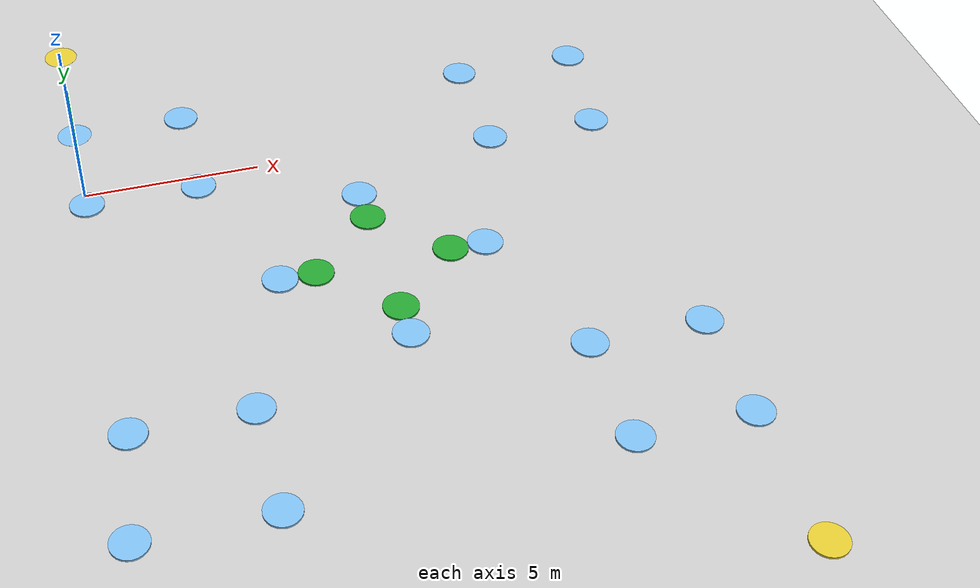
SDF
<sdf version="1.6">
 <world name="default">
  <scene><ambient>0.4 0.4 0.4 1</ambient><background>0.7 0.7 0.7 1</background><shadows>1</shadows></scene>
  <light name="sun" type="directional">
   <pose>0 0 10 0 -0 0</pose>
   <diffuse>0.8 0.8 0.8 1</diffuse>
   <specular>0.2 0.2 0.2 1</specular>
   <attenuation>
    <range>1000</range>
    <constant>0.9</constant>
    <linear>0.01</linear>
    <quadratic>0.001</quadratic>
   </attenuation>
   <direction>-0.5 0.1 -0.9</direction>
  </light>
  <model name="ground_plane">
   <static>1</static>
   <link name="link">
    <collision name="collision">
     <geometry><plane><normal>0 0 1</normal><size>100 100</size></plane></geometry>
     <surface>
      <contact><collide_bitmask>65535</collide_bitmask></contact>
      <friction><ode><mu>100</mu><mu2>50</mu2></ode></friction>
     </surface>
    </collision>
    <visual name="visual">
     <cast_shadows>0</cast_shadows>
     <geometry><plane><normal>0 0 1</normal><size>100 100</size></plane></geometry>
     <material>
      <script><uri>file://media/materials/scripts/gazebo.material</uri><name>Gazebo/Grey</name></script>
     </material>
    </visual>
   </link>
  </model>
  <physics name="default_physics" default="0" type="ode">
   <real_time_update_rate>1000</real_time_update_rate>
   <max_step_size>0.001</max_step_size>
   <real_time_factor>1</real_time_factor>
   <ode>
    <solver>
     <type>quick</type>
     <iters>150</iters>
     <precon_iters>0</precon_iters>
     <sor>1.4</sor>
     <use_dynamic_moi_rescaling>1</use_dynamic_moi_rescaling>
    </solver>
    <constraints>
     <cfm>1e-05</cfm>
     <erp>0.2</erp>
     <contact_max_correcting_vel>2000</contact_max_correcting_vel>
     <contact_surface_layer>0.01</contact_surface_layer>
    </constraints>
   </ode>
  </physics>
  <gravity>0 0 -9.8</gravity>
  <magnetic_field>6e-06 2.3e-05 -4.2e-05</magnetic_field>
  <atmosphere type="adiabatic"/>
  <audio><device>default</device></audio>
  <spherical_coordinates>
   <surface_model>EARTH_WGS84</surface_model>
   <latitude_deg>0</latitude_deg>
   <longitude_deg>0</longitude_deg>
   <elevation>0</elevation>
   <heading_deg>0</heading_deg>
  </spherical_coordinates>
  <model name="u1">
   <static>1</static>
   <pose>0 6.8 0 0 -0 0</pose>
   <link name="link">
    <inertial>
     <mass>1</mass>
     <inertia><ixx>0.145833</ixx><ixy>0</ixy><ixz>0</ixz><iyy>0.145833</iyy><iyz>0</iyz><izz>0.125</izz></inertia>
    </inertial>
    <collision name="collision">
     <geometry><cylinder><radius>0</radius><length>0</length></cylinder></geometry>
    </collision>
    <visual name="visual">
     <geometry><cylinder><radius>0.5</radius><length>0.0009555</length></cylinder></geometry>
     <material>
      <script><name>Gazebo/ZincYellow</name><uri>file://media/materials/scripts/gazebo.material</uri></script>
     </material>
    </visual>
   </link>
  </model>
  <model name="u2">
   <static>1</static>
   <pose>15.2 -16.2 0 0 -0 0</pose>
   <link name="link">
    <inertial>
     <mass>1</mass>
     <inertia><ixx>0.145833</ixx><ixy>0</ixy><ixz>0</ixz><iyy>0.145833</iyy><iyz>0</iyz><izz>0.125</izz></inertia>
    </inertial>
    <collision name="collision">
     <geometry><cylinder><radius>0</radius><length>0</length></cylinder></geometry>
    </collision>
    <visual name="visual">
     <geometry><cylinder><radius>0.5</radius><length>0.06</length></cylinder></geometry>
     <material>
      <script><name>Gazebo/ZincYellow</name><uri>file://media/materials/scripts/gazebo.material</uri></script>
     </material>
    </visual>
   </link>
  </model>
  <model name="4">
   <static>1</static>
   <pose>0 2.8 0 0 -0 0</pose>
   <link name="link">
    <inertial>
     <mass>1</mass>
     <inertia><ixx>0.145833</ixx><ixy>0</ixy><ixz>0</ixz><iyy>0.145833</iyy><iyz>0</iyz><izz>0.125</izz></inertia>
    </inertial>
    <collision name="collision">
     <geometry><cylinder><radius>0</radius><length>0</length></cylinder></geometry>
    </collision>
    <visual name="visual">
     <geometry><cylinder><radius>0.5</radius><length>0.00098418</length></cylinder></geometry>
     <material>
      <script><name>Gazebo/SkyBlue</name><uri>file://media/materials/scripts/gazebo.material</uri></script>
     </material>
    </visual>
   </link>
  </model>
  <model name="5">
   <static>1</static>
   <pose>3.2 2.8 0 0 -0 0</pose>
   <link name="link">
    <inertial>
     <mass>1</mass>
     <inertia><ixx>0.145833</ixx><ixy>0</ixy><ixz>0</ixz><iyy>0.145833</iyy><iyz>0</iyz><izz>0.125</izz></inertia>
    </inertial>
    <collision name="collision">
     <geometry><cylinder><radius>0</radius><length>0</length></cylinder></geometry>
    </collision>
    <visual name="visual">
     <geometry><cylinder><radius>0.5</radius><length>0.06</length></cylinder></geometry>
     <material>
      <script><name>Gazebo/SkyBlue</name><uri>file://media/materials/scripts/gazebo.material</uri></script>
     </material>
    </visual>
   </link>
  </model>
  <model name="6">
   <static>1</static>
   <pose>12.0 2.8 0 0 -0 0</pose>
   <link name="link">
    <inertial>
     <mass>1</mass>
     <inertia><ixx>0.145833</ixx><ixy>0</ixy><ixz>0</ixz><iyy>0.145833</iyy><iyz>0</iyz><izz>0.125</izz></inertia>
    </inertial>
    <collision name="collision">
     <geometry><cylinder><radius>0</radius><length>0</length></cylinder></geometry>
    </collision>
    <visual name="visual">
     <geometry><cylinder><radius>0.5</radius><length>0.06</length></cylinder></geometry>
     <material>
      <script><name>Gazebo/SkyBlue</name><uri>file://media/materials/scripts/gazebo.material</uri></script>
     </material>
    </visual>
   </link>
  </model>
  <model name="7">
   <static>1</static>
   <pose>15.6 2.8 0 0 -0 0</pose>
   <link name="link">
    <inertial>
     <mass>1</mass>
     <inertia><ixx>0.145833</ixx><ixy>0</ixy><ixz>0</ixz><iyy>0.145833</iyy><iyz>0</iyz><izz>0.125</izz></inertia>
    </inertial>
    <collision name="collision">
     <geometry><cylinder><radius>0</radius><length>0</length></cylinder></geometry>
    </collision>
    <visual name="visual">
     <geometry><cylinder><radius>0.5</radius><length>0.06</length></cylinder></geometry>
     <material>
      <script><name>Gazebo/SkyBlue</name><uri>file://media/materials/scripts/gazebo.material</uri></script>
     </material>
    </visual>
   </link>
  </model>
  <model name="8">
   <static>1</static>
   <pose>15.2 -0.4 0 0 -0 0</pose>
   <link name="link">
    <inertial>
     <mass>1</mass>
     <inertia><ixx>0.145833</ixx><ixy>0</ixy><ixz>0</ixz><iyy>0.145833</iyy><iyz>0</iyz><izz>0.125</izz></inertia>
    </inertial>
    <collision name="collision">
     <geometry><cylinder><radius>0</radius><length>0</length></cylinder></geometry>
    </collision>
    <visual name="visual">
     <geometry><cylinder><radius>0.5</radius><length>0.06</length></cylinder></geometry>
     <material>
      <script><name>Gazebo/SkyBlue</name><uri>file://media/materials/scripts/gazebo.material</uri></script>
     </material>
    </visual>
   </link>
  </model>
  <model name="9">
   <static>1</static>
   <pose>15.2 -9.0 0 0 -0 0</pose>
   <link name="link">
    <inertial>
     <mass>1</mass>
     <inertia><ixx>0.145833</ixx><ixy>0</ixy><ixz>0</ixz><iyy>0.145833</iyy><iyz>0</iyz><izz>0.125</izz></inertia>
    </inertial>
    <collision name="collision">
     <geometry><cylinder><radius>0</radius><length>0</length></cylinder></geometry>
    </collision>
    <visual name="visual">
     <geometry><cylinder><radius>0.5</radius><length>0.06</length></cylinder></geometry>
     <material>
      <script><name>Gazebo/SkyBlue</name><uri>file://media/materials/scripts/gazebo.material</uri></script>
     </material>
    </visual>
   </link>
  </model>
  <model name="10">
   <static>1</static>
   <pose>15.2 -12.2 0 0 -0 0</pose>
   <link name="link">
    <inertial>
     <mass>1</mass>
     <inertia><ixx>0.145833</ixx><ixy>0</ixy><ixz>0</ixz><iyy>0.145833</iyy><iyz>0</iyz><izz>0.125</izz></inertia>
    </inertial>
    <collision name="collision">
     <geometry><cylinder><radius>0</radius><length>0</length></cylinder></geometry>
    </collision>
    <visual name="visual">
     <geometry><cylinder><radius>0.5</radius><length>0.06</length></cylinder></geometry>
     <material>
      <script><name>Gazebo/SkyBlue</name><uri>file://media/materials/scripts/gazebo.material</uri></script>
     </material>
    </visual>
   </link>
  </model>
  <model name="11">
   <static>1</static>
   <pose>12.0 -12.2 0 0 -0 0</pose>
   <link name="link">
    <inertial>
     <mass>1</mass>
     <inertia><ixx>0.145833</ixx><ixy>0</ixy><ixz>0</ixz><iyy>0.145833</iyy><iyz>0</iyz><izz>0.125</izz></inertia>
    </inertial>
    <collision name="collision">
     <geometry><cylinder><radius>0</radius><length>0</length></cylinder></geometry>
    </collision>
    <visual name="visual">
     <geometry><cylinder><radius>0.5</radius><length>0.06</length></cylinder></geometry>
     <material>
      <script><name>Gazebo/SkyBlue</name><uri>file://media/materials/scripts/gazebo.material</uri></script>
     </material>
    </visual>
   </link>
  </model>
  <model name="12">
   <static>1</static>
   <pose>3.2 -12.2 0 0 -0 0</pose>
   <link name="link">
    <inertial>
     <mass>1</mass>
     <inertia><ixx>0.145833</ixx><ixy>0</ixy><ixz>0</ixz><iyy>0.145833</iyy><iyz>0</iyz><izz>0.125</izz></inertia>
    </inertial>
    <collision name="collision">
     <geometry><cylinder><radius>0</radius><length>0</length></cylinder></geometry>
    </collision>
    <visual name="visual">
     <geometry><cylinder><radius>0.5</radius><length>0.06</length></cylinder></geometry>
     <material>
      <script><name>Gazebo/SkyBlue</name><uri>file://media/materials/scripts/gazebo.material</uri></script>
     </material>
    </visual>
   </link>
  </model>
  <model name="1">
   <static>1</static>
   <pose>-0.4 -12.2 0 0 -0 0</pose>
   <link name="link">
    <inertial>
     <mass>1</mass>
     <inertia><ixx>0.145833</ixx><ixy>0</ixy><ixz>0</ixz><iyy>0.145833</iyy><iyz>0</iyz><izz>0.125</izz></inertia>
    </inertial>
    <collision name="collision">
     <geometry><cylinder><radius>0</radius><length>0</length></cylinder></geometry>
    </collision>
    <visual name="visual">
     <geometry><cylinder><radius>0.5</radius><length>0.06</length></cylinder></geometry>
     <material>
      <script><name>Gazebo/SkyBlue</name><uri>file://media/materials/scripts/gazebo.material</uri></script>
     </material>
    </visual>
   </link>
  </model>
  <model name="2">
   <static>1</static>
   <pose>0 -9.0 0 0 -0 0</pose>
   <link name="link">
    <inertial>
     <mass>1</mass>
     <inertia><ixx>0.145833</ixx><ixy>0</ixy><ixz>0</ixz><iyy>0.145833</iyy><iyz>0</iyz><izz>0.125</izz></inertia>
    </inertial>
    <collision name="collision">
     <geometry><cylinder><radius>0</radius><length>0</length></cylinder></geometry>
    </collision>
    <visual name="visual">
     <geometry><cylinder><radius>0.5</radius><length>0.06</length></cylinder></geometry>
     <material>
      <script><name>Gazebo/SkyBlue</name><uri>file://media/materials/scripts/gazebo.material</uri></script>
     </material>
    </visual>
   </link>
  </model>
  <model name="3">
   <static>1</static>
   <pose>0 -0.4 0 0 -0 0</pose>
   <link name="link">
    <inertial>
     <mass>1</mass>
     <inertia><ixx>0.145833</ixx><ixy>0</ixy><ixz>0</ixz><iyy>0.145833</iyy><iyz>0</iyz><izz>0.125</izz></inertia>
    </inertial>
    <collision name="collision">
     <geometry><cylinder><radius>0</radius><length>0</length></cylinder></geometry>
    </collision>
    <visual name="visual">
     <geometry><cylinder><radius>0.5</radius><length>0.06</length></cylinder></geometry>
     <material>
      <script><name>Gazebo/SkyBlue</name><uri>file://media/materials/scripts/gazebo.material</uri></script>
     </material>
    </visual>
   </link>
  </model>
  <model name="21">
   <static>1</static>
   <pose>3.2 -9.0 0 0 -0 0</pose>
   <link name="link">
    <inertial>
     <mass>1</mass>
     <inertia><ixx>0.145833</ixx><ixy>0</ixy><ixz>0</ixz><iyy>0.145833</iyy><iyz>0</iyz><izz>0.125</izz></inertia>
    </inertial>
    <collision name="collision">
     <geometry><cylinder><radius>0</radius><length>0</length></cylinder></geometry>
    </collision>
    <visual name="visual">
     <geometry><cylinder><radius>0.5</radius><length>0.06</length></cylinder></geometry>
     <material>
      <script><name>Gazebo/SkyBlue</name><uri>file://media/materials/scripts/gazebo.material</uri></script>
     </material>
    </visual>
   </link>
  </model>
  <model name="22">
   <static>1</static>
   <pose>7.6 -7.5 0 0 -0 0</pose>
   <link name="link">
    <inertial>
     <mass>1</mass>
     <inertia><ixx>0.145833</ixx><ixy>0</ixy><ixz>0</ixz><iyy>0.145833</iyy><iyz>0</iyz><izz>0.125</izz></inertia>
    </inertial>
    <collision name="collision">
     <geometry><cylinder><radius>0</radius><length>0</length></cylinder></geometry>
    </collision>
    <visual name="visual">
     <geometry><cylinder><radius>0.5</radius><length>0.06</length></cylinder></geometry>
     <material>
      <script><name>Gazebo/SkyBlue</name><uri>file://media/materials/scripts/gazebo.material</uri></script>
     </material>
    </visual>
   </link>
  </model>
  <model name="23">
   <static>1</static>
   <pose>12.0 -9.0 0 0 -0 0</pose>
   <link name="link">
    <inertial>
     <mass>1</mass>
     <inertia><ixx>0.145833</ixx><ixy>0</ixy><ixz>0</ixz><iyy>0.145833</iyy><iyz>0</iyz><izz>0.125</izz></inertia>
    </inertial>
    <collision name="collision">
     <geometry><cylinder><radius>0</radius><length>0</length></cylinder></geometry>
    </collision>
    <visual name="visual">
     <geometry><cylinder><radius>0.5</radius><length>0.06</length></cylinder></geometry>
     <material>
      <script><name>Gazebo/SkyBlue</name><uri>file://media/materials/scripts/gazebo.material</uri></script>
     </material>
    </visual>
   </link>
  </model>
  <model name="24">
   <static>1</static>
   <pose>10.5 -4.7 0 0 -0 0</pose>
   <link name="link">
    <inertial>
     <mass>1</mass>
     <inertia><ixx>0.145833</ixx><ixy>0</ixy><ixz>0</ixz><iyy>0.145833</iyy><iyz>0</iyz><izz>0.125</izz></inertia>
    </inertial>
    <collision name="collision">
     <geometry><cylinder><radius>0</radius><length>0</length></cylinder></geometry>
    </collision>
    <visual name="visual">
     <geometry><cylinder><radius>0.5</radius><length>0.06</length></cylinder></geometry>
     <material>
      <script><name>Gazebo/SkyBlue</name><uri>file://media/materials/scripts/gazebo.material</uri></script>
     </material>
    </visual>
   </link>
  </model>
  <model name="25">
   <static>1</static>
   <pose>12.0 -0.4 0 0 -0 0</pose>
   <link name="link">
    <inertial>
     <mass>1</mass>
     <inertia><ixx>0.145833</ixx><ixy>0</ixy><ixz>0</ixz><iyy>0.145833</iyy><iyz>0</iyz><izz>0.125</izz></inertia>
    </inertial>
    <collision name="collision">
     <geometry><cylinder><radius>0</radius><length>0</length></cylinder></geometry>
    </collision>
    <visual name="visual">
     <geometry><cylinder><radius>0.5</radius><length>0.06</length></cylinder></geometry>
     <material>
      <script><name>Gazebo/SkyBlue</name><uri>file://media/materials/scripts/gazebo.material</uri></script>
     </material>
    </visual>
   </link>
  </model>
  <model name="26">
   <static>1</static>
   <pose>7.6 -1.9 0 0 -0 0</pose>
   <link name="link">
    <inertial>
     <mass>1</mass>
     <inertia><ixx>0.145833</ixx><ixy>0</ixy><ixz>0</ixz><iyy>0.145833</iyy><iyz>0</iyz><izz>0.125</izz></inertia>
    </inertial>
    <collision name="collision">
     <geometry><cylinder><radius>0</radius><length>0</length></cylinder></geometry>
    </collision>
    <visual name="visual">
     <geometry><cylinder><radius>0.5</radius><length>0.06</length></cylinder></geometry>
     <material>
      <script><name>Gazebo/SkyBlue</name><uri>file://media/materials/scripts/gazebo.material</uri></script>
     </material>
    </visual>
   </link>
  </model>
  <model name="27">
   <static>1</static>
   <pose>3.2 -0.4 0 0 -0 0</pose>
   <link name="link">
    <inertial>
     <mass>1</mass>
     <inertia><ixx>0.145833</ixx><ixy>0</ixy><ixz>0</ixz><iyy>0.145833</iyy><iyz>0</iyz><izz>0.125</izz></inertia>
    </inertial>
    <collision name="collision">
     <geometry><cylinder><radius>0</radius><length>0</length></cylinder></geometry>
    </collision>
    <visual name="visual">
     <geometry><cylinder><radius>0.5</radius><length>0.06</length></cylinder></geometry>
     <material>
      <script><name>Gazebo/SkyBlue</name><uri>file://media/materials/scripts/gazebo.material</uri></script>
     </material>
    </visual>
   </link>
  </model>
  <model name="28">
   <static>1</static>
   <pose>4.7 -4.7 0 0 -0 0</pose>
   <link name="link">
    <inertial>
     <mass>1</mass>
     <inertia><ixx>0.145833</ixx><ixy>0</ixy><ixz>0</ixz><iyy>0.145833</iyy><iyz>0</iyz><izz>0.125</izz></inertia>
    </inertial>
    <collision name="collision">
     <geometry><cylinder><radius>0</radius><length>0</length></cylinder></geometry>
    </collision>
    <visual name="visual">
     <geometry><cylinder><radius>0.5</radius><length>0.06</length></cylinder></geometry>
     <material>
      <script><name>Gazebo/SkyBlue</name><uri>file://media/materials/scripts/gazebo.material</uri></script>
     </material>
    </visual>
   </link>
  </model>
  <model name="g1">
   <static>1</static>
   <pose>7.6 -6.5 0 0 -0 0</pose>
   <link name="link">
    <inertial>
     <mass>1</mass>
     <inertia><ixx>0.145833</ixx><ixy>0</ixy><ixz>0</ixz><iyy>0.145833</iyy><iyz>0</iyz><izz>0.125</izz></inertia>
    </inertial>
    <collision name="collision">
     <geometry><cylinder><radius>0</radius><length>0</length></cylinder></geometry>
    </collision>
    <visual name="visual">
     <geometry><cylinder><radius>0.5</radius><length>0.06</length></cylinder></geometry>
     <material>
      <script><name>Gazebo/GreenGlow</name><uri>file://media/materials/scripts/gazebo.material</uri></script>
     </material>
    </visual>
   </link>
  </model>
  <model name="g2">
   <static>1</static>
   <pose>9.5 -4.7 0 0 -0 0</pose>
   <link name="link">
    <inertial>
     <mass>1</mass>
     <inertia><ixx>0.145833</ixx><ixy>0</ixy><ixz>0</ixz><iyy>0.145833</iyy><iyz>0</iyz><izz>0.125</izz></inertia>
    </inertial>
    <collision name="collision">
     <geometry><cylinder><radius>0</radius><length>0</length></cylinder></geometry>
    </collision>
    <visual name="visual">
     <geometry><cylinder><radius>0.5</radius><length>0.06</length></cylinder></geometry>
     <material>
      <script><name>Gazebo/GreenGlow</name><uri>file://media/materials/scripts/gazebo.material</uri></script>
     </material>
    </visual>
   </link>
  </model>
  <model name="g3">
   <static>1</static>
   <pose>7.6 -2.9 0 0 -0 0</pose>
   <link name="link">
    <inertial>
     <mass>1</mass>
     <inertia><ixx>0.145833</ixx><ixy>0</ixy><ixz>0</ixz><iyy>0.145833</iyy><iyz>0</iyz><izz>0.125</izz></inertia>
    </inertial>
    <collision name="collision">
     <geometry><cylinder><radius>0</radius><length>0</length></cylinder></geometry>
    </collision>
    <visual name="visual">
     <geometry><cylinder><radius>0.5</radius><length>0.06</length></cylinder></geometry>
     <material>
      <script><name>Gazebo/GreenGlow</name><uri>file://media/materials/scripts/gazebo.material</uri></script>
     </material>
    </visual>
   </link>
  </model>
  <model name="g4">
   <static>1</static>
   <pose>5.7 -4.7 0 0 -0 0</pose>
   <link name="link">
    <inertial>
     <mass>1</mass>
     <inertia><ixx>0.145833</ixx><ixy>0</ixy><ixz>0</ixz><iyy>0.145833</iyy><iyz>0</iyz><izz>0.125</izz></inertia>
    </inertial>
    <collision name="collision">
     <geometry><cylinder><radius>0</radius><length>0</length></cylinder></geometry>
    </collision>
    <visual name="visual">
     <geometry><cylinder><radius>0.5</radius><length>0.06</length></cylinder></geometry>
     <material>
      <script><name>Gazebo/GreenGlow</name><uri>file://media/materials/scripts/gazebo.material</uri></script>
     </material>
    </visual>
   </link>
  </model>
 </world>
</sdf>
